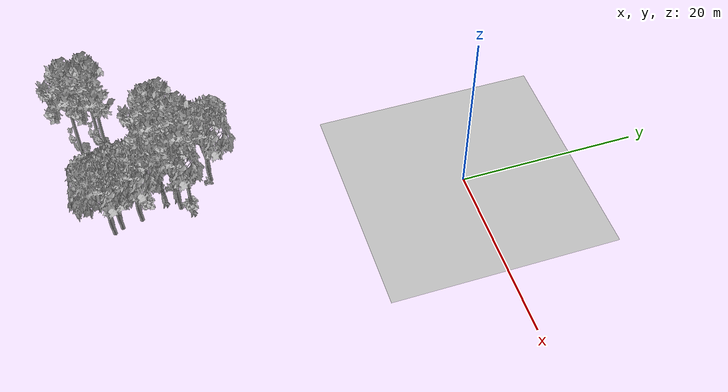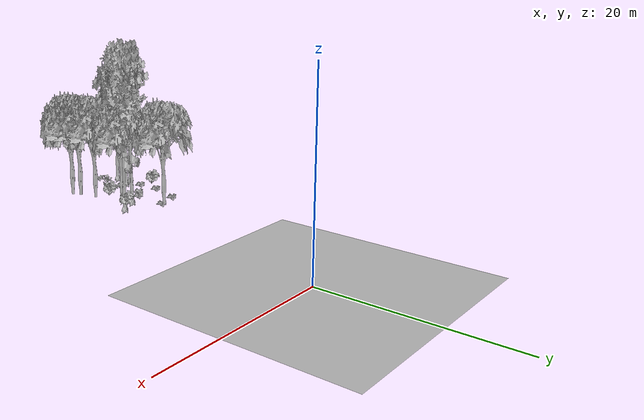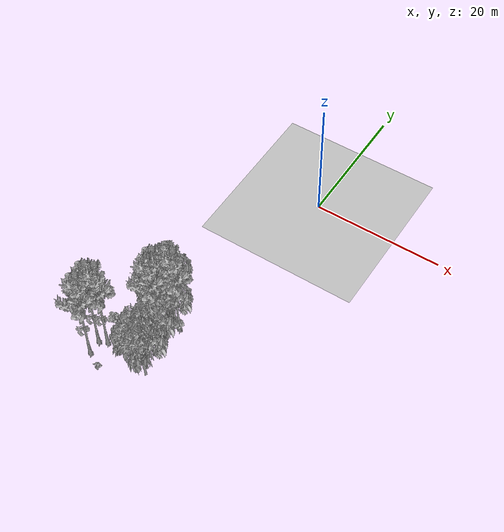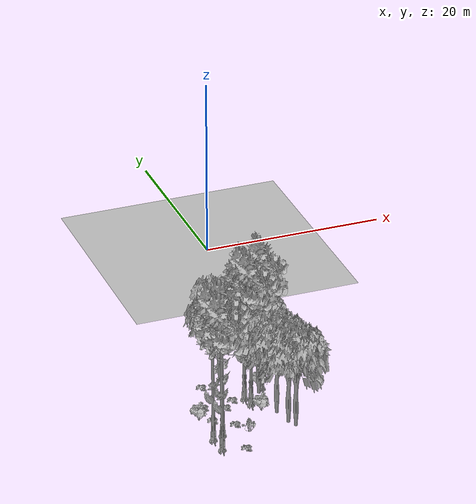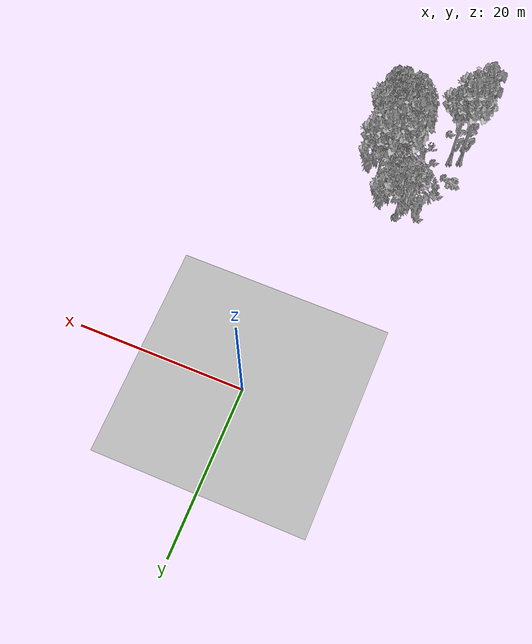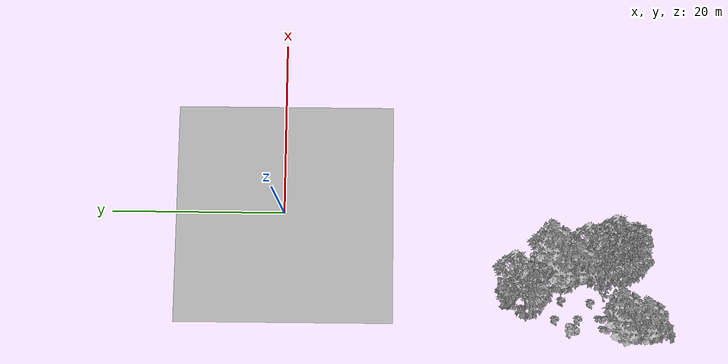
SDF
<sdf version="1.7">
 <world name="default">
  <model name="ground_plane">
   <static>1</static>
   <link name="link">
    <collision name="collision">
     <pose>-50 0 0 0 -0 0</pose>
     <geometry><plane><normal>0 0 1</normal><size>80 80</size></plane></geometry>
     <surface><contact><ode><min_depth>0.01</min_depth><max_vel>0</max_vel></ode></contact></surface>
    </collision>
    <visual name="grass">
     <cast_shadows>0</cast_shadows>
     <geometry>
      <mesh>
       <scale>0.46714285714285714 0.46714285714285714 0.1</scale>
       <uri>file://grass_plane/meshes/grass_plane.dae</uri>
      </mesh>
     </geometry>
    </visual>
   </link>
  </model>
  <model name="Tree 20">
   <static>1</static>
   <pose>-4.892058368894851 -29.02101901538135 0 1.57079 -0 0</pose>
   <link name="link">
    <collision name="collision">
     <geometry><mesh><scale>3.5 5 3.5</scale><uri>model://tree_9/meshes/tree_9.obj</uri></mesh></geometry>
    </collision>
    <visual name="visual">
     <geometry><mesh><scale>3.5 5 3.5</scale><uri>model://tree_9/meshes/tree_9.obj</uri></mesh></geometry>
    </visual>
   </link>
  </model>
  <model name="Tree 36">
   <static>1</static>
   <pose>-12.986457269644191 -36.640525900050974 0 1.57079 -0 0</pose>
   <link name="link">
    <collision name="collision">
     <geometry><mesh><scale>3.5 5 3.5</scale><uri>model://tree_9/meshes/tree_9.obj</uri></mesh></geometry>
    </collision>
    <visual name="visual">
     <geometry><mesh><scale>3.5 5 3.5</scale><uri>model://tree_9/meshes/tree_9.obj</uri></mesh></geometry>
    </visual>
   </link>
  </model>
  <model name="Tree 59">
   <static>1</static>
   <pose>-4.955459104583753 -36.51069822564586 0 1.57079 -0 0</pose>
   <link name="link">
    <collision name="collision">
     <geometry><mesh><scale>3.5 5 3.5</scale><uri>model://tree_2/meshes/tree_2.obj</uri></mesh></geometry>
    </collision>
    <visual name="visual">
     <geometry><mesh><scale>3.5 5 3.5</scale><uri>model://tree_2/meshes/tree_2.obj</uri></mesh></geometry>
    </visual>
   </link>
  </model>
  <model name="Tree 79">
   <static>1</static>
   <pose>-11.822438266525122 -36.151112682074114 0 1.57079 -0 0</pose>
   <link name="link">
    <collision name="collision">
     <geometry><mesh><scale>3.5 5 3.5</scale><uri>model://tree_9/meshes/tree_9.obj</uri></mesh></geometry>
    </collision>
    <visual name="visual">
     <geometry><mesh><scale>3.5 5 3.5</scale><uri>model://tree_9/meshes/tree_9.obj</uri></mesh></geometry>
    </visual>
   </link>
  </model>
  <model name="Tree 89">
   <static>1</static>
   <pose>-4.508133091653626 -37.39549868612845 0 1.57079 -0 0</pose>
   <link name="link">
    <collision name="collision">
     <geometry><mesh><scale>3.5 5 3.5</scale><uri>model://tree_2/meshes/tree_2.obj</uri></mesh></geometry>
    </collision>
    <visual name="visual">
     <geometry><mesh><scale>3.5 5 3.5</scale><uri>model://tree_2/meshes/tree_2.obj</uri></mesh></geometry>
    </visual>
   </link>
  </model>
  <model name="Tree 149">
   <static>1</static>
   <pose>-7.026187652332432 -31.595063681137407 0 1.57079 -0 0</pose>
   <link name="link">
    <collision name="collision">
     <geometry><mesh><scale>3.5 5 3.5</scale><uri>model://tree_9/meshes/tree_9.obj</uri></mesh></geometry>
    </collision>
    <visual name="visual">
     <geometry><mesh><scale>3.5 5 3.5</scale><uri>model://tree_9/meshes/tree_9.obj</uri></mesh></geometry>
    </visual>
   </link>
  </model>
  <model name="Tree 208">
   <static>1</static>
   <pose>-5.687953895878955 -30.15071524621043 0 1.57079 -0 0</pose>
   <link name="link">
    <collision name="collision">
     <geometry><mesh><scale>3.5 5 3.5</scale><uri>model://tree_2/meshes/tree_2.obj</uri></mesh></geometry>
    </collision>
    <visual name="visual">
     <geometry><mesh><scale>3.5 5 3.5</scale><uri>model://tree_2/meshes/tree_2.obj</uri></mesh></geometry>
    </visual>
   </link>
  </model>
  <model name="Tree 232">
   <static>1</static>
   <pose>-12.815924348118909 -38.699286350405785 0 1.57079 -0 0</pose>
   <link name="link">
    <collision name="collision">
     <geometry><mesh><scale>3.5 5 3.5</scale><uri>model://tree_9/meshes/tree_9.obj</uri></mesh></geometry>
    </collision>
    <visual name="visual">
     <geometry><mesh><scale>3.5 5 3.5</scale><uri>model://tree_9/meshes/tree_9.obj</uri></mesh></geometry>
    </visual>
   </link>
  </model>
  <model name="Tree 264">
   <static>1</static>
   <pose>-8.493308941411552 -26.287550319871347 0 1.57079 -0 0</pose>
   <link name="link">
    <collision name="collision">
     <geometry><mesh><scale>3.5 5 3.5</scale><uri>model://tree_2/meshes/tree_2.obj</uri></mesh></geometry>
    </collision>
    <visual name="visual">
     <geometry><mesh><scale>3.5 5 3.5</scale><uri>model://tree_2/meshes/tree_2.obj</uri></mesh></geometry>
    </visual>
   </link>
  </model>
  <model name="Tree 591">
   <static>1</static>
   <pose>-5.39042000876676 -34.37809619915521 0 1.57079 -0 0</pose>
   <link name="link">
    <collision name="collision">
     <geometry><mesh><scale>3.5 5 3.5</scale><uri>model://tree_2/meshes/tree_2.obj</uri></mesh></geometry>
    </collision>
    <visual name="visual">
     <geometry><mesh><scale>3.5 5 3.5</scale><uri>model://tree_2/meshes/tree_2.obj</uri></mesh></geometry>
    </visual>
   </link>
  </model>
  <model name="Tree 609">
   <static>1</static>
   <pose>-7.24301494630614 -30.298049683095076 0 1.57079 -0 0</pose>
   <link name="link">
    <collision name="collision">
     <geometry><mesh><scale>3.5 5 3.5</scale><uri>model://tree_9/meshes/tree_9.obj</uri></mesh></geometry>
    </collision>
    <visual name="visual">
     <geometry><mesh><scale>3.5 5 3.5</scale><uri>model://tree_9/meshes/tree_9.obj</uri></mesh></geometry>
    </visual>
   </link>
  </model>
  <model name="Bush 128">
   <static>1</static>
   <pose>-5.148842709014062 -29.175528219454705 0 1.57079 -0 0</pose>
   <link name="link">
    <collision name="collision">
     <geometry><mesh><scale>2 2 2</scale><uri>model://bush_1/meshes/bush_1.obj</uri></mesh></geometry>
     <surface><contact><collide_without_contact>false</collide_without_contact></contact></surface>
    </collision>
    <visual name="visual">
     <geometry><mesh><scale>2 2 2</scale><uri>model://bush_1/meshes/bush_1.obj</uri></mesh></geometry>
    </visual>
   </link>
  </model>
  <model name="Bush 318">
   <static>1</static>
   <pose>-9.90351697759564 -31.932053010266532 0 1.57079 -0 0</pose>
   <link name="link">
    <collision name="collision">
     <geometry><mesh><scale>2 2 2</scale><uri>model://bush_2/meshes/bush_2.obj</uri></mesh></geometry>
     <surface><contact><collide_without_contact>false</collide_without_contact></contact></surface>
    </collision>
    <visual name="visual">
     <geometry><mesh><scale>2 2 2</scale><uri>model://bush_2/meshes/bush_2.obj</uri></mesh></geometry>
    </visual>
   </link>
  </model>
  <model name="Bush 320">
   <static>1</static>
   <pose>-12.050058615572883 -31.17381995679643 0 1.57079 -0 0</pose>
   <link name="link">
    <collision name="collision">
     <geometry><mesh><scale>2 2 2</scale><uri>model://bush_2/meshes/bush_2.obj</uri></mesh></geometry>
     <surface><contact><collide_without_contact>false</collide_without_contact></contact></surface>
    </collision>
    <visual name="visual">
     <geometry><mesh><scale>2 2 2</scale><uri>model://bush_2/meshes/bush_2.obj</uri></mesh></geometry>
    </visual>
   </link>
  </model>
  <model name="Bush 336">
   <static>1</static>
   <pose>-6.638915852506493 -33.53002540248846 0 1.57079 -0 0</pose>
   <link name="link">
    <collision name="collision">
     <geometry><mesh><scale>2 2 2</scale><uri>model://bush_1/meshes/bush_1.obj</uri></mesh></geometry>
     <surface><contact><collide_without_contact>false</collide_without_contact></contact></surface>
    </collision>
    <visual name="visual">
     <geometry><mesh><scale>2 2 2</scale><uri>model://bush_1/meshes/bush_1.obj</uri></mesh></geometry>
    </visual>
   </link>
  </model>
  <model name="Bush 339">
   <static>1</static>
   <pose>-8.344464259824765 -26.56572133018929 0 1.57079 -0 0</pose>
   <link name="link">
    <collision name="collision">
     <geometry><mesh><scale>2 2 2</scale><uri>model://bush_2/meshes/bush_2.obj</uri></mesh></geometry>
     <surface><contact><collide_without_contact>false</collide_without_contact></contact></surface>
    </collision>
    <visual name="visual">
     <geometry><mesh><scale>2 2 2</scale><uri>model://bush_2/meshes/bush_2.obj</uri></mesh></geometry>
    </visual>
   </link>
  </model>
  <model name="Bush 355">
   <static>1</static>
   <pose>-10.121594576836628 -35.289962935253705 0 1.57079 -0 0</pose>
   <link name="link">
    <collision name="collision">
     <geometry><mesh><scale>2 2 2</scale><uri>model://bush_2/meshes/bush_2.obj</uri></mesh></geometry>
     <surface><contact><collide_without_contact>false</collide_without_contact></contact></surface>
    </collision>
    <visual name="visual">
     <geometry><mesh><scale>2 2 2</scale><uri>model://bush_2/meshes/bush_2.obj</uri></mesh></geometry>
    </visual>
   </link>
  </model>
  <model name="Bush 367">
   <static>1</static>
   <pose>-9.196294060136982 -36.82391014804173 0 1.57079 -0 0</pose>
   <link name="link">
    <collision name="collision">
     <geometry><mesh><scale>2 2 2</scale><uri>model://bush_4/meshes/bush_4.obj</uri></mesh></geometry>
     <surface><contact><collide_without_contact>false</collide_without_contact></contact></surface>
    </collision>
    <visual name="visual">
     <geometry><mesh><scale>2 2 2</scale><uri>model://bush_4/meshes/bush_4.obj</uri></mesh></geometry>
    </visual>
   </link>
  </model>
  <model name="Bush 445">
   <static>1</static>
   <pose>-13.187409136214995 -33.06131106303794 0 1.57079 -0 0</pose>
   <link name="link">
    <collision name="collision">
     <geometry><mesh><scale>2 2 2</scale><uri>model://bush_1/meshes/bush_1.obj</uri></mesh></geometry>
     <surface><contact><collide_without_contact>false</collide_without_contact></contact></surface>
    </collision>
    <visual name="visual">
     <geometry><mesh><scale>2 2 2</scale><uri>model://bush_1/meshes/bush_1.obj</uri></mesh></geometry>
    </visual>
   </link>
  </model>
  <model name="Bush 457">
   <static>1</static>
   <pose>-12.022346914224418 -33.8225971129674 0 1.57079 -0 0</pose>
   <link name="link">
    <collision name="collision">
     <geometry><mesh><scale>2 2 2</scale><uri>model://bush_2/meshes/bush_2.obj</uri></mesh></geometry>
     <surface><contact><collide_without_contact>false</collide_without_contact></contact></surface>
    </collision>
    <visual name="visual">
     <geometry><mesh><scale>2 2 2</scale><uri>model://bush_2/meshes/bush_2.obj</uri></mesh></geometry>
    </visual>
   </link>
  </model>
  <model name="Bush 590">
   <static>1</static>
   <pose>-8.761528041522993 -30.803557968961517 0 1.57079 -0 0</pose>
   <link name="link">
    <collision name="collision">
     <geometry><mesh><scale>2 2 2</scale><uri>model://bush_2/meshes/bush_2.obj</uri></mesh></geometry>
     <surface><contact><collide_without_contact>false</collide_without_contact></contact></surface>
    </collision>
    <visual name="visual">
     <geometry><mesh><scale>2 2 2</scale><uri>model://bush_2/meshes/bush_2.obj</uri></mesh></geometry>
    </visual>
   </link>
  </model>
  <model name="Bush 602">
   <static>1</static>
   <pose>-10.85551066093031 -27.385527232400257 0 1.57079 -0 0</pose>
   <link name="link">
    <collision name="collision">
     <geometry><mesh><scale>2 2 2</scale><uri>model://bush_2/meshes/bush_2.obj</uri></mesh></geometry>
     <surface><contact><collide_without_contact>false</collide_without_contact></contact></surface>
    </collision>
    <visual name="visual">
     <geometry><mesh><scale>2 2 2</scale><uri>model://bush_2/meshes/bush_2.obj</uri></mesh></geometry>
    </visual>
   </link>
  </model>
  <model name="Bush 617">
   <static>1</static>
   <pose>-10.681020102447224 -39.86411293997217 0 1.57079 -0 0</pose>
   <link name="link">
    <collision name="collision">
     <geometry><mesh><scale>2 2 2</scale><uri>model://bush_2/meshes/bush_2.obj</uri></mesh></geometry>
     <surface><contact><collide_without_contact>false</collide_without_contact></contact></surface>
    </collision>
    <visual name="visual">
     <geometry><mesh><scale>2 2 2</scale><uri>model://bush_2/meshes/bush_2.obj</uri></mesh></geometry>
    </visual>
   </link>
  </model>
 </world>
</sdf>
